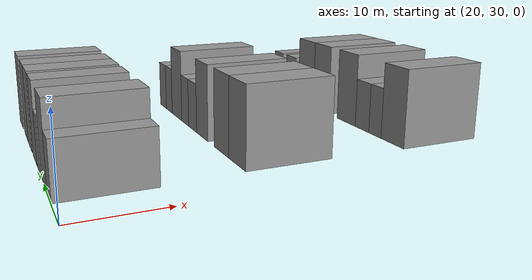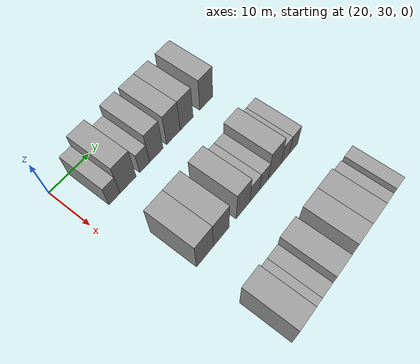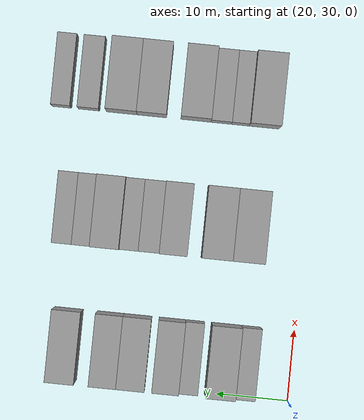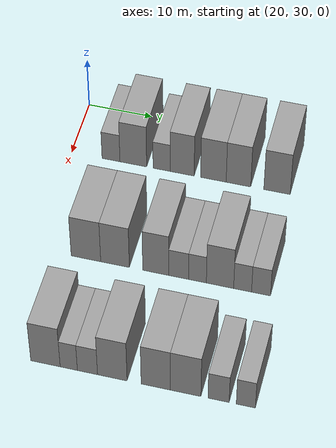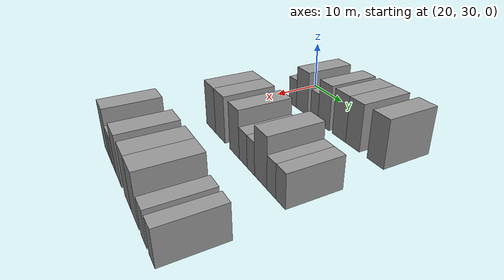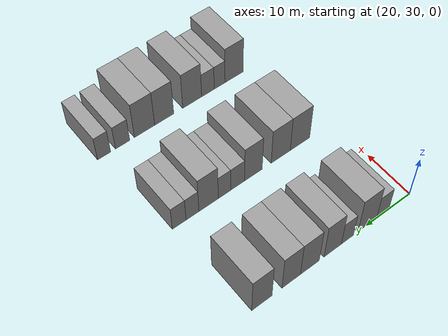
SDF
<sdf version="1.6">
 <world name="default">
  <model name="building_66">
   <static>1</static>
   <pose>25.0000 36.1805 0 0.000000 0.000000 0.000000</pose>
   <link name="link">
    <pose>0 0 3.00 0 0 0</pose>
    <collision name="collision"><geometry><box><size>10.0000 2.8066 6.0000</size></box></geometry></collision>
    <visual name="visual">
     <cast_shadows>0</cast_shadows>
     <geometry><box><size>10.0000 2.8066 6.0000</size></box></geometry>
     <material>
      <script>
       <uri>model://grey_wall/materials/scripts</uri>
       <uri>model://grey_wall/materials/textures</uri>
       <name>vrc/grey_wall</name>
      </script>
     </material>
    </visual>
   </link>
  </model>
  <model name="building_67">
   <static>1</static>
   <pose>25.0000 39.6690 0 0.000000 0.000000 0.000000</pose>
   <link name="link">
    <pose>0 0 4.50 0 0 0</pose>
    <collision name="collision"><geometry><box><size>10.0000 4.1702 9.0000</size></box></geometry></collision>
    <visual name="visual">
     <cast_shadows>0</cast_shadows>
     <geometry><box><size>10.0000 4.1702 9.0000</size></box></geometry>
     <material>
      <script>
       <uri>model://grey_wall/materials/scripts</uri>
       <uri>model://grey_wall/materials/textures</uri>
       <name>vrc/grey_wall</name>
      </script>
     </material>
    </visual>
   </link>
  </model>
  <model name="building_68">
   <static>1</static>
   <pose>25.0000 44.0798 0 0.000000 0.000000 0.000000</pose>
   <link name="link">
    <pose>0 0 3.00 0 0 0</pose>
    <collision name="collision"><geometry><box><size>10.0000 2.6514 6.0000</size></box></geometry></collision>
    <visual name="visual">
     <cast_shadows>0</cast_shadows>
     <geometry><box><size>10.0000 2.6514 6.0000</size></box></geometry>
     <material>
      <script>
       <uri>model://grey_wall/materials/scripts</uri>
       <uri>model://grey_wall/materials/textures</uri>
       <name>vrc/grey_wall</name>
      </script>
     </material>
    </visual>
   </link>
  </model>
  <model name="building_69">
   <static>1</static>
   <pose>25.0000 47.2660 0 0.000000 0.000000 0.000000</pose>
   <link name="link">
    <pose>0 0 4.50 0 0 0</pose>
    <collision name="collision"><geometry><box><size>10.0000 3.7211 9.0000</size></box></geometry></collision>
    <visual name="visual">
     <cast_shadows>0</cast_shadows>
     <geometry><box><size>10.0000 3.7211 9.0000</size></box></geometry>
     <material>
      <script>
       <uri>model://grey_wall/materials/scripts</uri>
       <uri>model://grey_wall/materials/textures</uri>
       <name>vrc/grey_wall</name>
      </script>
     </material>
    </visual>
   </link>
  </model>
  <model name="building_70">
   <static>1</static>
   <pose>25.0000 52.0918 0 0.000000 0.000000 0.000000</pose>
   <link name="link">
    <pose>0 0 4.50 0 0 0</pose>
    <collision name="collision"><geometry><box><size>10.0000 3.9304 9.0000</size></box></geometry></collision>
    <visual name="visual">
     <cast_shadows>0</cast_shadows>
     <geometry><box><size>10.0000 3.9304 9.0000</size></box></geometry>
     <material>
      <script>
       <uri>model://grey_wall/materials/scripts</uri>
       <uri>model://grey_wall/materials/textures</uri>
       <name>vrc/grey_wall</name>
      </script>
     </material>
    </visual>
   </link>
  </model>
  <model name="building_71">
   <static>1</static>
   <pose>25.0000 55.9439 0 0.000000 0.000000 0.000000</pose>
   <link name="link">
    <pose>0 0 4.50 0 0 0</pose>
    <collision name="collision"><geometry><box><size>10.0000 3.7738 9.0000</size></box></geometry></collision>
    <visual name="visual">
     <cast_shadows>0</cast_shadows>
     <geometry><box><size>10.0000 3.7738 9.0000</size></box></geometry>
     <material>
      <script>
       <uri>model://grey_wall/materials/scripts</uri>
       <uri>model://grey_wall/materials/textures</uri>
       <name>vrc/grey_wall</name>
      </script>
     </material>
    </visual>
   </link>
  </model>
  <model name="building_72">
   <static>1</static>
   <pose>25.0000 61.8441 0 0.000000 0.000000 0.000000</pose>
   <link name="link">
    <pose>0 0 4.50 0 0 0</pose>
    <collision name="collision"><geometry><box><size>10.0000 4.0265 9.0000</size></box></geometry></collision>
    <visual name="visual">
     <cast_shadows>0</cast_shadows>
     <geometry><box><size>10.0000 4.0265 9.0000</size></box></geometry>
     <material>
      <script>
       <uri>model://grey_wall/materials/scripts</uri>
       <uri>model://grey_wall/materials/textures</uri>
       <name>vrc/grey_wall</name>
      </script>
     </material>
    </visual>
   </link>
  </model>
  <model name="building_181">
   <static>1</static>
   <pose>44.0000 37.6222 0 0.000000 0.000000 0.000000</pose>
   <link name="link">
    <pose>0 0 4.50 0 0 0</pose>
    <collision name="collision"><geometry><box><size>10.0000 4.4419 9.0000</size></box></geometry></collision>
    <visual name="visual">
     <cast_shadows>0</cast_shadows>
     <geometry><box><size>10.0000 4.4419 9.0000</size></box></geometry>
     <material>
      <script>
       <uri>model://grey_wall/materials/scripts</uri>
       <uri>model://grey_wall/materials/textures</uri>
       <name>vrc/grey_wall</name>
      </script>
     </material>
    </visual>
   </link>
  </model>
  <model name="building_182">
   <static>1</static>
   <pose>44.0000 41.9887 0 0.000000 0.000000 0.000000</pose>
   <link name="link">
    <pose>0 0 4.50 0 0 0</pose>
    <collision name="collision"><geometry><box><size>10.0000 4.2912 9.0000</size></box></geometry></collision>
    <visual name="visual">
     <cast_shadows>0</cast_shadows>
     <geometry><box><size>10.0000 4.2912 9.0000</size></box></geometry>
     <material>
      <script>
       <uri>model://grey_wall/materials/scripts</uri>
       <uri>model://grey_wall/materials/textures</uri>
       <name>vrc/grey_wall</name>
      </script>
     </material>
    </visual>
   </link>
  </model>
  <model name="building_183">
   <static>1</static>
   <pose>44.0000 48.0656 0 0.000000 0.000000 0.000000</pose>
   <link name="link">
    <pose>0 0 4.50 0 0 0</pose>
    <collision name="collision"><geometry><box><size>10.0000 3.8625 9.0000</size></box></geometry></collision>
    <visual name="visual">
     <cast_shadows>0</cast_shadows>
     <geometry><box><size>10.0000 3.8625 9.0000</size></box></geometry>
     <material>
      <script>
       <uri>model://grey_wall/materials/scripts</uri>
       <uri>model://grey_wall/materials/textures</uri>
       <name>vrc/grey_wall</name>
      </script>
     </material>
    </visual>
   </link>
  </model>
  <model name="building_184">
   <static>1</static>
   <pose>44.0000 51.4627 0 0.000000 0.000000 0.000000</pose>
   <link name="link">
    <pose>0 0 3.00 0 0 0</pose>
    <collision name="collision"><geometry><box><size>10.0000 2.9318 6.0000</size></box></geometry></collision>
    <visual name="visual">
     <cast_shadows>0</cast_shadows>
     <geometry><box><size>10.0000 2.9318 6.0000</size></box></geometry>
     <material>
      <script>
       <uri>model://grey_wall/materials/scripts</uri>
       <uri>model://grey_wall/materials/textures</uri>
       <name>vrc/grey_wall</name>
      </script>
     </material>
    </visual>
   </link>
  </model>
  <model name="building_185">
   <static>1</static>
   <pose>44.0000 54.2445 0 0.000000 0.000000 0.000000</pose>
   <link name="link">
    <pose>0 0 3.00 0 0 0</pose>
    <collision name="collision"><geometry><box><size>10.0000 2.6319 6.0000</size></box></geometry></collision>
    <visual name="visual">
     <cast_shadows>0</cast_shadows>
     <geometry><box><size>10.0000 2.6319 6.0000</size></box></geometry>
     <material>
      <script>
       <uri>model://grey_wall/materials/scripts</uri>
       <uri>model://grey_wall/materials/textures</uri>
       <name>vrc/grey_wall</name>
      </script>
     </material>
    </visual>
   </link>
  </model>
  <model name="building_186">
   <static>1</static>
   <pose>44.0000 57.5705 0 0.000000 0.000000 0.000000</pose>
   <link name="link">
    <pose>0 0 4.50 0 0 0</pose>
    <collision name="collision"><geometry><box><size>10.0000 4.0200 9.0000</size></box></geometry></collision>
    <visual name="visual">
     <cast_shadows>0</cast_shadows>
     <geometry><box><size>10.0000 4.0200 9.0000</size></box></geometry>
     <material>
      <script>
       <uri>model://grey_wall/materials/scripts</uri>
       <uri>model://grey_wall/materials/textures</uri>
       <name>vrc/grey_wall</name>
      </script>
     </material>
    </visual>
   </link>
  </model>
  <model name="building_187">
   <static>1</static>
   <pose>44.0000 60.8925 0 0.000000 0.000000 0.000000</pose>
   <link name="link">
    <pose>0 0 3.00 0 0 0</pose>
    <collision name="collision"><geometry><box><size>10.0000 2.6240 6.0000</size></box></geometry></collision>
    <visual name="visual">
     <cast_shadows>0</cast_shadows>
     <geometry><box><size>10.0000 2.6240 6.0000</size></box></geometry>
     <material>
      <script>
       <uri>model://grey_wall/materials/scripts</uri>
       <uri>model://grey_wall/materials/textures</uri>
       <name>vrc/grey_wall</name>
      </script>
     </material>
    </visual>
   </link>
  </model>
  <model name="building_188">
   <static>1</static>
   <pose>44.0000 63.5874 0 0.000000 0.000000 0.000000</pose>
   <link name="link">
    <pose>0 0 3.00 0 0 0</pose>
    <collision name="collision"><geometry><box><size>10.0000 2.7658 6.0000</size></box></geometry></collision>
    <visual name="visual">
     <cast_shadows>0</cast_shadows>
     <geometry><box><size>10.0000 2.7658 6.0000</size></box></geometry>
     <material>
      <script>
       <uri>model://grey_wall/materials/scripts</uri>
       <uri>model://grey_wall/materials/textures</uri>
       <name>vrc/grey_wall</name>
      </script>
     </material>
    </visual>
   </link>
  </model>
  <model name="building_308">
   <static>1</static>
   <pose>63.0000 37.1640 0 0.000000 0.000000 0.000000</pose>
   <link name="link">
    <pose>0 0 4.50 0 0 0</pose>
    <collision name="collision"><geometry><box><size>10.0000 4.2527 9.0000</size></box></geometry></collision>
    <visual name="visual">
     <cast_shadows>0</cast_shadows>
     <geometry><box><size>10.0000 4.2527 9.0000</size></box></geometry>
     <material>
      <script>
       <uri>model://grey_wall/materials/scripts</uri>
       <uri>model://grey_wall/materials/textures</uri>
       <name>vrc/grey_wall</name>
      </script>
     </material>
    </visual>
   </link>
  </model>
  <model name="building_309">
   <static>1</static>
   <pose>63.0000 40.5279 0 0.000000 0.000000 0.000000</pose>
   <link name="link">
    <pose>0 0 3.00 0 0 0</pose>
    <collision name="collision"><geometry><box><size>10.0000 2.4752 6.0000</size></box></geometry></collision>
    <visual name="visual">
     <cast_shadows>0</cast_shadows>
     <geometry><box><size>10.0000 2.4752 6.0000</size></box></geometry>
     <material>
      <script>
       <uri>model://grey_wall/materials/scripts</uri>
       <uri>model://grey_wall/materials/textures</uri>
       <name>vrc/grey_wall</name>
      </script>
     </material>
    </visual>
   </link>
  </model>
  <model name="building_310">
   <static>1</static>
   <pose>63.0000 43.2118 0 0.000000 0.000000 0.000000</pose>
   <link name="link">
    <pose>0 0 3.00 0 0 0</pose>
    <collision name="collision"><geometry><box><size>10.0000 2.8926 6.0000</size></box></geometry></collision>
    <visual name="visual">
     <cast_shadows>0</cast_shadows>
     <geometry><box><size>10.0000 2.8926 6.0000</size></box></geometry>
     <material>
      <script>
       <uri>model://grey_wall/materials/scripts</uri>
       <uri>model://grey_wall/materials/textures</uri>
       <name>vrc/grey_wall</name>
      </script>
     </material>
    </visual>
   </link>
  </model>
  <model name="building_311">
   <static>1</static>
   <pose>63.0000 46.7725 0 0.000000 0.000000 0.000000</pose>
   <link name="link">
    <pose>0 0 4.50 0 0 0</pose>
    <collision name="collision"><geometry><box><size>10.0000 4.2289 9.0000</size></box></geometry></collision>
    <visual name="visual">
     <cast_shadows>0</cast_shadows>
     <geometry><box><size>10.0000 4.2289 9.0000</size></box></geometry>
     <material>
      <script>
       <uri>model://grey_wall/materials/scripts</uri>
       <uri>model://grey_wall/materials/textures</uri>
       <name>vrc/grey_wall</name>
      </script>
     </material>
    </visual>
   </link>
  </model>
  <model name="building_312">
   <static>1</static>
   <pose>63.0000 52.9628 0 0.000000 0.000000 0.000000</pose>
   <link name="link">
    <pose>0 0 4.50 0 0 0</pose>
    <collision name="collision"><geometry><box><size>10.0000 4.1516 9.0000</size></box></geometry></collision>
    <visual name="visual">
     <cast_shadows>0</cast_shadows>
     <geometry><box><size>10.0000 4.1516 9.0000</size></box></geometry>
     <material>
      <script>
       <uri>model://grey_wall/materials/scripts</uri>
       <uri>model://grey_wall/materials/textures</uri>
       <name>vrc/grey_wall</name>
      </script>
     </material>
    </visual>
   </link>
  </model>
  <model name="building_313">
   <static>1</static>
   <pose>63.0000 57.1916 0 0.000000 0.000000 0.000000</pose>
   <link name="link">
    <pose>0 0 4.50 0 0 0</pose>
    <collision name="collision"><geometry><box><size>10.0000 4.3061 9.0000</size></box></geometry></collision>
    <visual name="visual">
     <cast_shadows>0</cast_shadows>
     <geometry><box><size>10.0000 4.3061 9.0000</size></box></geometry>
     <material>
      <script>
       <uri>model://grey_wall/materials/scripts</uri>
       <uri>model://grey_wall/materials/textures</uri>
       <name>vrc/grey_wall</name>
      </script>
     </material>
    </visual>
   </link>
  </model>
  <model name="building_314">
   <static>1</static>
   <pose>63.0000 61.8307 0 0.000000 0.000000 0.000000</pose>
   <link name="link">
    <pose>0 0 3.00 0 0 0</pose>
    <collision name="collision"><geometry><box><size>10.0000 2.9721 6.0000</size></box></geometry></collision>
    <visual name="visual">
     <cast_shadows>0</cast_shadows>
     <geometry><box><size>10.0000 2.9721 6.0000</size></box></geometry>
     <material>
      <script>
       <uri>model://grey_wall/materials/scripts</uri>
       <uri>model://grey_wall/materials/textures</uri>
       <name>vrc/grey_wall</name>
      </script>
     </material>
    </visual>
   </link>
  </model>
  <model name="building_315">
   <static>1</static>
   <pose>63.0000 65.6509 0 0.000000 0.000000 0.000000</pose>
   <link name="link">
    <pose>0 0 3.00 0 0 0</pose>
    <collision name="collision"><geometry><box><size>10.0000 2.6682 6.0000</size></box></geometry></collision>
    <visual name="visual">
     <cast_shadows>0</cast_shadows>
     <geometry><box><size>10.0000 2.6682 6.0000</size></box></geometry>
     <material>
      <script>
       <uri>model://grey_wall/materials/scripts</uri>
       <uri>model://grey_wall/materials/textures</uri>
       <name>vrc/grey_wall</name>
      </script>
     </material>
    </visual>
   </link>
  </model>
 </world>
</sdf>
